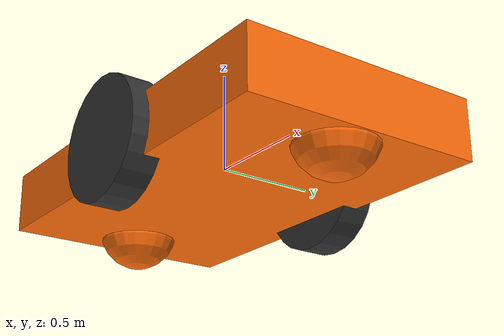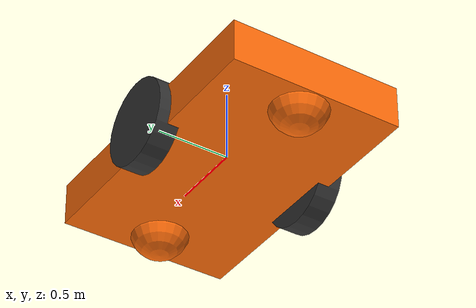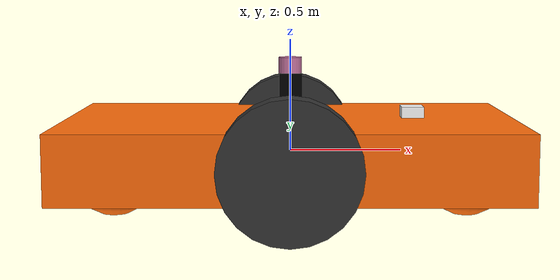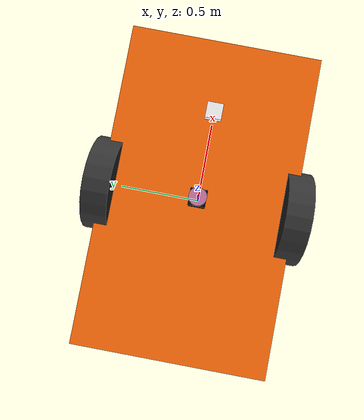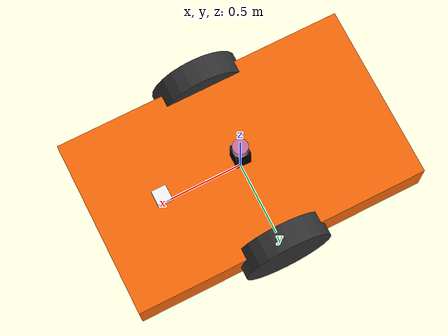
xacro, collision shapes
<?xml version="1.0" ?>
<robot name="m2wr" xmlns:xacro="http://www.ros.org/wiki/xacro">

  <!-- access to the material.xacro file -->
  <!-- It includes colors for rviz simulation-->
  <xacro:include filename ="$(find m2wr_description)/urdf/materials.xacro" />

  <!-- access to the ma2wr.gazebo file -->
  <!-- It includes gazebo colors and plugins-->
  <xacro:include filename ="$(find m2wr_description)/urdf/m2wr.gazebo" />

  <!-- access to the macros.xacro file -->
  <!-- It includes wheel links description-->
  <xacro:include filename ="$(find m2wr_description)/urdf/macros.xacro" />

  <!-- Used to solve an error that occurs during simulation-->

  <!-- BASE-FOOTPRINT -->
  <!-- base_footprint is a fictitious link(frame) that is on the ground right below base_link origin -->
  <link name="base_footprint">
  </link>

  <gazebo reference="base_footprint">
    <turnGravityOff>false</turnGravityOff>
  </gazebo>

  <joint name="base_footprint_joint" type="fixed">
    <origin xyz="0 0 -0.3" rpy="0 0 0" />
    <parent link="base_link"/>
    <child link="base_footprint" />
  </joint>

  <!-- BASE_LINK -->
  <link name="base_link">
    <pose>0 0 0 0 0 0</pose>
    <inertial>
      <mass value="50"/>
      <origin rpy="0 0 0" xyz="0 0 0"/>
      <xacro:box_inertia mass="50" x="2.0" y="1.2" z="0.3" />
    </inertial>
    <collision name="collision_link">
      <geometry>
        <box size="2 1.2 0.3"/>
      </geometry>
    </collision>
    <visual>
      <origin rpy="0 0 0" xyz="0 0 0"/>
      <geometry>
        <box size="2 1.2 0.3"/>
      </geometry>
      <material name="orange"/>
    </visual>
    <!-- caster front -->
    <collision name="caster_front_collision">
      <origin rpy=" 0 0 0" xyz="0.8 0 -0.10"/>
      <geometry>
        <sphere radius="0.2"/>
      </geometry>
      <surface>
        <friction>
          <ode>
            <mu>0</mu>
            <mu2>0</mu2>
            <slip1>1.0</slip1>
            <slip2>1.0</slip2>
          </ode>
        </friction>
      </surface>
    </collision>
    <visual name="caster_front_visual">
      <origin rpy=" 0 0 0" xyz="0.8 0 -0.10"/>
      <geometry>
        <sphere radius="0.2"/>
      </geometry>
     <material name="black"/>
    </visual>

    <!-- caster back -->
    <collision name="caster_back_collision">
      <origin rpy=" 0 0 0" xyz="-0.8 0 -0.10"/>
      <geometry>
        <sphere radius="0.2"/>
      </geometry>
      <surface>
        <friction>
          <ode>
            <mu>0</mu>
            <mu2>0</mu2>
            <slip1>1.0</slip1>
            <slip2>1.0</slip2>
          </ode>
        </friction>
      </surface>
    </collision>
    <visual name="caster_front_visual">
      <origin rpy=" 0 0 0" xyz="-0.8 0 -0.10"/>
      <geometry>
        <sphere radius="0.2"/>
      </geometry>
     <material name="black"/>
    </visual>
  </link>

<!-- Sensor Link and joint -->

<!-- IMU Link and joint -->

    <link name="imu_link">
    <inertial>
        <origin xyz="0 0 0" rpy="0 0 0" />
        <mass value="0.5" />
        <xacro:box_inertia mass="0.5" x="0.1" y="0.1" z="0.05"/>
    </inertial>

    <visual>
        <origin xyz="0 0 0" rpy="0 0 0" />
        <geometry>
        <box size="0.1 0.1 0.05"/>
        </geometry>
        <material name="white" />
    </visual>

    <collision>
        <origin xyz="0 0 0" rpy="0 0 0"/>
        <geometry>
        <box size="0.1 0.1 0.05"/>
        </geometry>
    </collision>
    </link>

  <joint name="joint_imu" type="fixed">
    <origin xyz="0.55 0 0.175" rpy="0 0 0"/>
    <parent link="base_link"/>
    <child link="imu_link"/>
  </joint>

<!-- GPS Link and joint -->

    <link name="gps_link">
    <inertial>
        <origin xyz="0 0 0" rpy="0 0 0" />
        <mass value="0.5" />
        <xacro:box_inertia mass="0.5" x="0.1" y="0.1" z="0.2"/>
    </inertial>

    <visual>
        <origin xyz="0 0 0" rpy="0 0 0" />
        <geometry>
        <box size="0.1 0.1 0.2"/>
        </geometry>
        <material name="black" />
    </visual>

    <collision>
        <origin xyz="0 0 0" rpy="0 0 0"/>
        <geometry>
        <box size="0.1 0.1 0.2"/>
        </geometry>
    </collision>
    </link>

  <joint name="joint_gps" type="fixed">
    <origin xyz="0.0 0 0.25" rpy="0 0 0"/>
    <parent link="base_link"/>
    <child link="gps_link"/>
  </joint>

  <!-- Contains the description of the right wheel link-->
  <xacro:link_wheel name ="link_right_wheel" />

  <!-- Contains the description of the right wheel joint, the parameters are passed to the macros file to complete the description-->
  <xacro:joint_wheel name ="joint_right_wheel" parent="base_link" child= "link_right_wheel" origin_xyz= "0 -0.6 0.0" />

  <!-- Contains the description of the left wheel link-->
  <xacro:link_wheel name ="link_left_wheel" />

  <!-- Contains the description of the left wheel joint, the parameters are passed to the macros file to complete the description-->
  <xacro:joint_wheel name ="joint_left_wheel" parent="base_link" child= "link_left_wheel" origin_xyz= "0 0.6 0.0" />

    <!-- VELODYNE VLP-16-->

  <xacro:arg name="gpu" default="false"/>
  <xacro:property name="gpu" value="$(arg gpu)" />

  <xacro:include filename="$(find velodyne_description)/urdf/VLP-16.urdf.xacro"/>
  <VLP-16 parent="base_link" name="velodyne" topic="/velodyne_points" hz="10" samples="440" gpu="${gpu}">
    <origin xyz="0.0 0 0.35" rpy="0 0 0" />
  </VLP-16>

  <!-- Used to solve an error that occurs during simulation-->

</robot>

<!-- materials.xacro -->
<robot>
<material name="black">
    <color rgba="0.0 0.0 0.0 1.0"/>
  </material>
  <material name="blue">
    <color rgba="0.203125 0.23828125 0.28515625 1.0"/>
  </material>
  <material name="green">
    <color rgba="0.0 0.8 0.0 1.0"/>
  </material>
  <material name="grey">
    <color rgba="0.2 0.2 0.2 1.0"/>
  </material>
  <material name="orange">
    <color rgba="1.0 0.423529411765 0.0392156862745 1.0"/>
  </material>
  <material name="brown">
    <color rgba="0.870588235294 0.811764705882 0.764705882353 1.0"/>
  </material>
  <material name="red">
    <color rgba="0.80078125 0.12890625 0.1328125 1.0"/>
  </material>
  <material name="white">
    <color rgba="1.0 1.0 1.0 1.0"/>
  </material>
  </robot>

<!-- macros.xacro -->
<robot name="m2wr_macros" xmlns:xacro="http://www.ros.org/wiki/xacro">

    <xacro:property name="wheel_radius" value="0.3" />
    <xacro:property name="wheel_length" value="0.16" />
    <xacro:property name="wheel_mass" value="10" /> <!-- in kg-->

    <macro name="cylinder_inertia" params="mass r l" >
        <inertia  ixx="${mass *(3*r*r+l*l)/12}" ixy = "0" ixz = "0"
                  iyy="${mass *(3*r*r+l*l)/12}" iyz = "0"
                  izz="${mass *(r*r)/2}" />
    </macro>

    <macro name="box_inertia" params="mass x y z" >
        <inertia  ixx = "${0.083 * mass * (y*y + z*z)}" ixy = "0" ixz = "0"
                  iyy="${0.083 * mass * (x*x + z*z)}" iyz = "0"
                  izz="${0.083 * mass * (x*x + y*y)}" />
    </macro>

         <!-- WHEELS -->
    <macro name= "link_wheel" params= "name" >
        <link name="${name}">
            <inertial>
            <mass value="${wheel_mass}"/>
            <origin rpy="0 1.5707 1.5707" xyz="0 0 0"/>
            <cylinder_inertia  mass="${wheel_mass}" r="${wheel_radius}" l="${wheel_length}" />
            </inertial>
            <collision name="${name}_collision">
            <origin rpy="0 1.5707 1.5707" xyz="0 0 0"/>
            <geometry>
                <cylinder length="${wheel_length}" radius="${wheel_radius}"/>
            </geometry>
            </collision>
            <visual name="${name}_visual">
            <origin rpy="0 1.5707 1.5707" xyz="0 0 0"/>
            <geometry>
                <cylinder length="${wheel_length}" radius="${wheel_radius}"/>
            </geometry>
            <material name="grey"/>
            </visual>
        </link>
    </macro>

        <!-- WHEELS JOINTS -->
    <macro name= "joint_wheel" params= "name parent child origin_xyz" >
        <joint name="${name}" type="continuous">
            <origin rpy="0 0 0" xyz="${origin_xyz}"/>
            <child link="${child}"/>
            <parent link="${parent}"/>
            <axis rpy="0 0 0" xyz="0 1 0"/>
            <limit effort="10000" velocity="1000"/>
            <joint_properties damping="1.0" friction="1.0"/>
        </joint>
    </macro>

</robot>

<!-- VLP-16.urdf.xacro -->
<robot xmlns:xacro="http://www.ros.org/wiki/xacro" name="VLP-16">
  <xacro:property name="M_PI" value="3.1415926535897931" />
  <xacro:macro name="VLP-16" params="*origin is_sim:=true parent:=base_link name:=velodyne tf_prefix:='' topic:=/velodyne_points organize_cloud:=false hz:=10 lasers:=16 samples:=1875 collision_range:=0.3 min_range:=0.0 max_range:=100.0 noise:=0.008 min_angle:=-${M_PI} max_angle:=${M_PI} gpu:=false">

    <joint name="${name}_base_mount_joint" type="fixed">
      <xacro:insert_block name="origin" />
      <parent link="${parent}"/>
      <child link="${name}_base_link"/>
    </joint>

    <link name="${name}_base_link">
      <inertial>
        <mass value="0.83"/>
        <origin xyz="0 0 0.03585"/>
        <inertia ixx="${(0.83 * (3.0*0.0516*0.0516 + 0.0717*0.0717)) / 12.0}" ixy="0" ixz="0"
          iyy="${(0.83 * (3.0*0.0516*0.0516 + 0.0717*0.0717)) / 12.0}" iyz="0"
          izz="${0.5 * 0.83 * (0.0516*0.0516)}"/>
      </inertial>
      <visual>
        <geometry>
          <mesh filename="package://velodyne_description/meshes/VLP16_base_1.dae" />
        </geometry>
      </visual>
      <visual>
        <geometry>
          <mesh filename="package://velodyne_description/meshes/VLP16_base_2.dae" />
        </geometry>
      </visual>
      <collision>
        <origin rpy="0 0 0" xyz="0 0 0.03585"/>
        <geometry>
          <cylinder radius="0.0516" length="0.0717"/>
        </geometry>
      </collision>
    </link>

    <joint name="${name}_base_scan_joint" type="fixed" >
      <origin xyz="0 0 0.0377" rpy="0 0 0" />
      <parent link="${name}_base_link" />
      <child link="${name}"/>
    </joint>

    <link name="${name}">
      <inertial>
        <mass value="0.01"/>
        <origin xyz="0 0 0"/>
        <inertia ixx="1e-7" ixy="0" ixz="0" iyy="1e-7" iyz="0" izz="1e-7"/>
      </inertial>
      <visual>
        <origin xyz="0 0 -0.0377" />
        <geometry>
          <mesh filename="package://velodyne_description/meshes/VLP16_scan.dae" />
        </geometry>
      </visual>
      <collision>
        <geometry>
          <sphere radius="0"/>
        </geometry>
      </collision>
    </link>

    <!-- Gazebo requires the velodyne_gazebo_plugins package -->
    <xacro:if value="${is_sim}">
        <gazebo reference="${name}">
            <xacro:if value="${gpu}">
                <sensor type="gpu_ray" name="${name}-VLP16">
                <pose>0 0 0 0 0 0</pose>
                <visualize>false</visualize>
                <update_rate>${hz}</update_rate>
                <ray>
                    <scan>
                    <horizontal>
                        <samples>${samples}</samples>
                        <resolution>1</resolution>
                        <min_angle>${min_angle}</min_angle>
                        <max_angle>${max_angle}</max_angle>
                    </horizontal>
                    <vertical>
                        <samples>${lasers}</samples>
                        <resolution>1</resolution>
                        <min_angle>-${15.0*M_PI/180.0}</min_angle>
                        <max_angle> ${15.0*M_PI/180.0}</max_angle>
                    </vertical>
                    </scan>
                    <range>
                    <min>${collision_range}</min>
                    <max>${max_range+1}</max>
                    <resolution>0.001</resolution>
                    </range>
                    <noise>
                    <type>gaussian</type>
                    <mean>0.0</mean>
                    <stddev>0.0</stddev>
                    </noise>
                </ray>
                <plugin name="gazebo_ros_laser_controller" filename="libgazebo_ros_velodyne_laser.so">
                    <ros>
                    <namespace>/${name}</namespace>
                    <remapping>~/out:=${topic}</remapping>
                    </ros>
                    <tf_prefix>${tf_prefix}</tf_prefix>
                    <frame_name>${name}</frame_name>
                    <organize_cloud>${organize_cloud}</organize_cloud>
                    <min_range>${min_range}</min_range>
                    <max_range>${max_range}</max_range>
                    <gaussian_noise>${noise}</gaussian_noise>
                </plugin>
                </sensor>
            </xacro:if>
            <xacro:unless value="${gpu}">
                <sensor type="ray" name="${name}-VLP16">
                <pose>0 0 0 0 0 0</pose>
                <visualize>false</visualize>
                <update_rate>${hz}</update_rate>
                <ray>
                    <scan>
                    <horizontal>
                        <samples>${samples}</samples>
                        <resolution>1</resolution>
                        <min_angle>${min_angle}</min_angle>
                        <max_angle>${max_angle}</max_angle>
                    </horizontal>
                    <vertical>
                        <samples>${lasers}</samples>
                        <resolution>1</resolution>
                        <min_angle>-${15.0*M_PI/180.0}</min_angle>
                        <max_angle> ${15.0*M_PI/180.0}</max_angle>
                    </vertical>
                    </scan>
                    <range>
                    <min>${collision_range}</min>
                    <max>${max_range+1}</max>
                    <resolution>0.001</resolution>
                    </range>
                    <noise>
                    <type>gaussian</type>
                    <mean>0.0</mean>
                    <stddev>0.0</stddev>
                    </noise>
                </ray>
                <plugin name="gazebo_ros_laser_controller" filename="libgazebo_ros_velodyne_laser.so">
                    <ros>
                    <namespace>/${name}</namespace>
                    <remapping>~/out:=${topic}</remapping>
                    </ros>
                    <tf_prefix>${tf_prefix}</tf_prefix>
                    <frame_name>${name}</frame_name>
                    <organize_cloud>${organize_cloud}</organize_cloud>
                    <min_range>${min_range}</min_range>
                    <max_range>${max_range}</max_range>
                    <gaussian_noise>${noise}</gaussian_noise>
                </plugin>
                </sensor>
            </xacro:unless>
        </gazebo>
    </xacro:if>

  </xacro:macro>
</robot>
